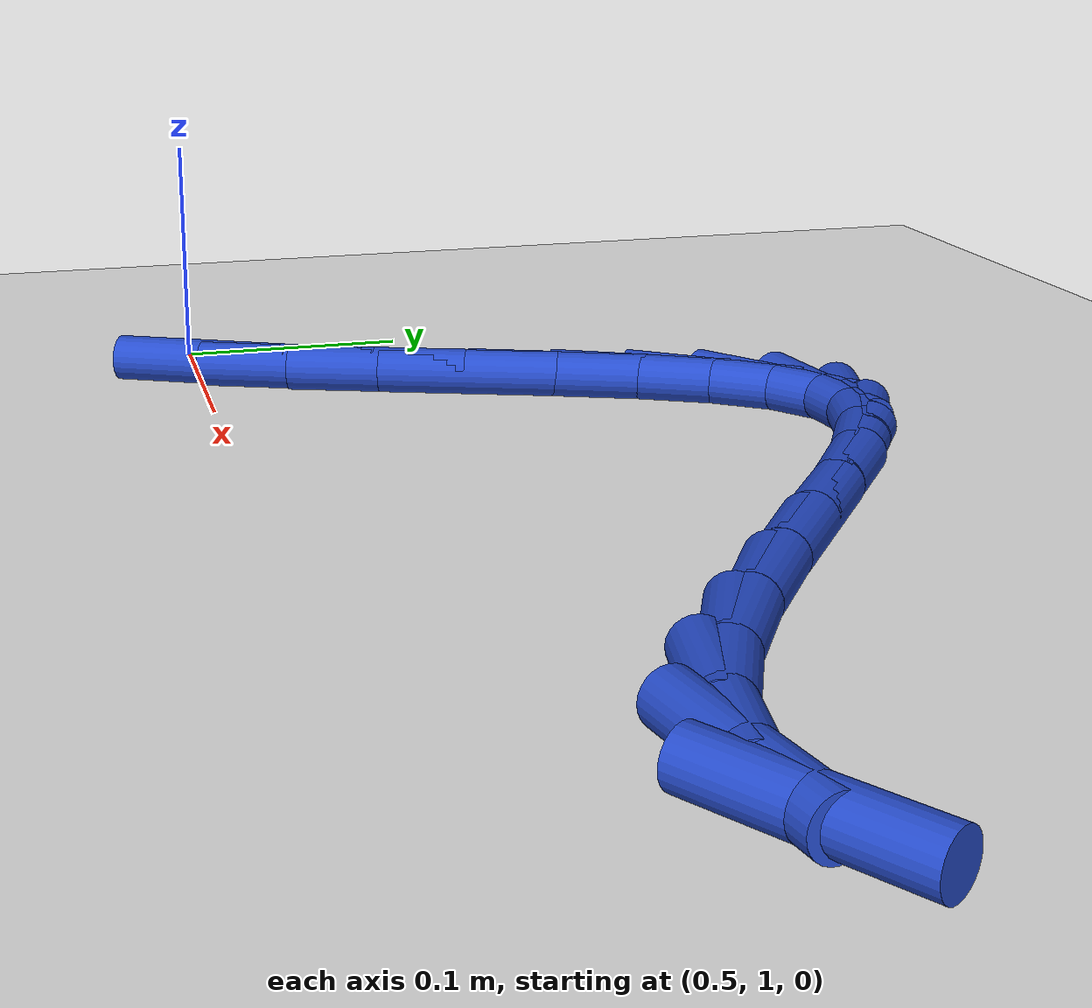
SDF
<sdf version="1.6">
 <world name="default">
  <model name="ground_plane">
   <static>1</static>
   <link name="link">
    <collision name="collision">
     <geometry><plane><normal>0 0 1</normal><size>100 100</size></plane></geometry>
     <surface><friction><ode><mu>100</mu><mu2>50</mu2></ode></friction></surface>
    </collision>
    <visual name="visual">
     <cast_shadows>0</cast_shadows>
     <geometry><plane><normal>0 0 1</normal><size>100 100</size></plane></geometry>
     <material>
      <script><uri>file://media/materials/scripts/gazebo.material</uri><name>Gazebo/WhiteGlow</name></script>
     </material>
    </visual>
   </link>
  </model>
  <model name="line">
   <link name="link_37">
    <pose>0.5518503437649304 1.001461385851583 0.01 0 1.57 1.106547656888992</pose>
    <collision name="collision">
     <geometry><cylinder><radius>0.01</radius><length>0.08</length></cylinder></geometry>
    </collision>
    <visual name="visual">
     <material>
      <script><name>Gazebo/Blue</name><uri>file://media/materials/scripts/gazebo.material</uri></script>
     </material>
     <geometry><cylinder><radius>0.01</radius><length>0.08</length></cylinder></geometry>
    </visual>
   </link>
   <link name="link_38">
    <pose>0.56981500103304 1.0373367759392773 0.01 0 1.57 1.1787809687492365</pose>
    <collision name="collision">
     <geometry><cylinder><radius>0.01</radius><length>0.08</length></cylinder></geometry>
    </collision>
    <visual name="visual">
     <material>
      <script><name>Gazebo/Blue</name><uri>file://media/materials/scripts/gazebo.material</uri></script>
     </material>
     <geometry><cylinder><radius>0.01</radius><length>0.08</length></cylinder></geometry>
    </visual>
   </link>
   <link name="link_39">
    <pose>0.5855913043726308 1.0754979189473892 0.01 0 1.57 1.2146382591876208</pose>
    <collision name="collision">
     <geometry><cylinder><radius>0.01</radius><length>0.08</length></cylinder></geometry>
    </collision>
    <visual name="visual">
     <material>
      <script><name>Gazebo/Blue</name><uri>file://media/materials/scripts/gazebo.material</uri></script>
     </material>
     <geometry><cylinder><radius>0.01</radius><length>0.08</length></cylinder></geometry>
    </visual>
   </link>
   <link name="link_40">
    <pose>0.5999566102617917 1.1141119545383242 0.01 0 1.57 1.217478451750848</pose>
    <collision name="collision">
     <geometry><cylinder><radius>0.01</radius><length>0.08</length></cylinder></geometry>
    </collision>
    <visual name="visual">
     <material>
      <script><name>Gazebo/Blue</name><uri>file://media/materials/scripts/gazebo.material</uri></script>
     </material>
     <geometry><cylinder><radius>0.01</radius><length>0.08</length></cylinder></geometry>
    </visual>
   </link>
   <link name="link_41">
    <pose>0.6136882751786112 1.1513460223744874 0.01 0 1.57 1.1835456714124042</pose>
    <collision name="collision">
     <geometry><cylinder><radius>0.01</radius><length>0.08</length></cylinder></geometry>
    </collision>
    <visual name="visual">
     <material>
      <script><name>Gazebo/Blue</name><uri>file://media/materials/scripts/gazebo.material</uri></script>
     </material>
     <geometry><cylinder><radius>0.01</radius><length>0.08</length></cylinder></geometry>
    </visual>
   </link>
   <link name="link_42">
    <pose>0.6275636556011782 1.1853672621182834 0.01 0 1.57 1.0986626775487782</pose>
    <collision name="collision">
     <geometry><cylinder><radius>0.01</radius><length>0.08</length></cylinder></geometry>
    </collision>
    <visual name="visual">
     <material>
      <script><name>Gazebo/Blue</name><uri>file://media/materials/scripts/gazebo.material</uri></script>
     </material>
     <geometry><cylinder><radius>0.01</radius><length>0.08</length></cylinder></geometry>
    </visual>
   </link>
   <link name="link_43">
    <pose>0.6423601080075816 1.2143428134321175 0.01 0 1.57 0.9295544306102976</pose>
    <collision name="collision">
     <geometry><cylinder><radius>0.01</radius><length>0.08</length></cylinder></geometry>
    </collision>
    <visual name="visual">
     <material>
      <script><name>Gazebo/Blue</name><uri>file://media/materials/scripts/gazebo.material</uri></script>
     </material>
     <geometry><cylinder><radius>0.01</radius><length>0.08</length></cylinder></geometry>
    </visual>
   </link>
   <link name="link_44">
    <pose>0.6588549888759102 1.2364398159783954 0.01 0 1.57 0.6144706610278099</pose>
    <collision name="collision">
     <geometry><cylinder><radius>0.01</radius><length>0.08</length></cylinder></geometry>
    </collision>
    <visual name="visual">
     <material>
      <script><name>Gazebo/Blue</name><uri>file://media/materials/scripts/gazebo.material</uri></script>
     </material>
     <geometry><cylinder><radius>0.01</radius><length>0.08</length></cylinder></geometry>
    </visual>
   </link>
   <link name="link_45">
    <pose>0.6778256546842527 1.2498254094195214 0.01 0 1.57 0.12982233505834545</pose>
    <collision name="collision">
     <geometry><cylinder><radius>0.01</radius><length>0.08</length></cylinder></geometry>
    </collision>
    <visual name="visual">
     <material>
      <script><name>Gazebo/Blue</name><uri>file://media/materials/scripts/gazebo.material</uri></script>
     </material>
     <geometry><cylinder><radius>0.01</radius><length>0.08</length></cylinder></geometry>
    </visual>
   </link>
   <link name="link_46">
    <pose>0.7000303085403444 1.2527243739877905 0.01 0 1.57 -0.2857190893415801</pose>
    <collision name="collision">
     <geometry><cylinder><radius>0.01</radius><length>0.08</length></cylinder></geometry>
    </collision>
    <visual name="visual">
     <material>
      <script><name>Gazebo/Blue</name><uri>file://media/materials/scripts/gazebo.material</uri></script>
     </material>
     <geometry><cylinder><radius>0.01</radius><length>0.08</length></cylinder></geometry>
    </visual>
   </link>
   <link name="link_47">
    <pose>0.7256131645809981 1.2452092416968248 0.01 0 1.57 -0.5043320786215698</pose>
    <collision name="collision">
     <geometry><cylinder><radius>0.01</radius><length>0.08</length></cylinder></geometry>
    </collision>
    <visual name="visual">
     <material>
      <script><name>Gazebo/Blue</name><uri>file://media/materials/scripts/gazebo.material</uri></script>
     </material>
     <geometry><cylinder><radius>0.01</radius><length>0.08</length></cylinder></geometry>
    </visual>
   </link>
   <link name="link_48">
    <pose>0.7539891093596383 1.2295473988739276 0.01 0 1.57 -0.6114819625548455</pose>
    <collision name="collision">
     <geometry><cylinder><radius>0.01</radius><length>0.08</length></cylinder></geometry>
    </collision>
    <visual name="visual">
     <material>
      <script><name>Gazebo/Blue</name><uri>file://media/materials/scripts/gazebo.material</uri></script>
     </material>
     <geometry><cylinder><radius>0.01</radius><length>0.08</length></cylinder></geometry>
    </visual>
   </link>
   <link name="link_49">
    <pose>0.7845305938335502 1.2081339384536351 0.01 0 1.57 -0.6575235081321753</pose>
    <collision name="collision">
     <geometry><cylinder><radius>0.01</radius><length>0.08</length></cylinder></geometry>
    </collision>
    <visual name="visual">
     <material>
      <script><name>Gazebo/Blue</name><uri>file://media/materials/scripts/gazebo.material</uri></script>
     </material>
     <geometry><cylinder><radius>0.01</radius><length>0.08</length></cylinder></geometry>
    </visual>
   </link>
   <link name="link_50">
    <pose>0.81661006896002 1.1833639533704845 0.01 0 1.57 -0.6624127575131042</pose>
    <collision name="collision">
     <geometry><cylinder><radius>0.01</radius><length>0.08</length></cylinder></geometry>
    </collision>
    <visual name="visual">
     <material>
      <script><name>Gazebo/Blue</name><uri>file://media/materials/scripts/gazebo.material</uri></script>
     </material>
     <geometry><cylinder><radius>0.01</radius><length>0.08</length></cylinder></geometry>
    </visual>
   </link>
   <link name="link_51">
    <pose>0.8495999856963333 1.157632536559012 0.01 0 1.57 -0.6307464454100689</pose>
    <collision name="collision">
     <geometry><cylinder><radius>0.01</radius><length>0.08</length></cylinder></geometry>
    </collision>
    <visual name="visual">
     <material>
      <script><name>Gazebo/Blue</name><uri>file://media/materials/scripts/gazebo.material</uri></script>
     </material>
     <geometry><cylinder><radius>0.01</radius><length>0.08</length></cylinder></geometry>
    </visual>
   </link>
   <link name="link_52">
    <pose>0.8828727949997763 1.1333347809537553 0.01 0 1.57 -0.5561695094122968</pose>
    <collision name="collision">
     <geometry><cylinder><radius>0.01</radius><length>0.08</length></cylinder></geometry>
    </collision>
    <visual name="visual">
     <material>
      <script><name>Gazebo/Blue</name><uri>file://media/materials/scripts/gazebo.material</uri></script>
     </material>
     <geometry><cylinder><radius>0.01</radius><length>0.08</length></cylinder></geometry>
    </visual>
   </link>
   <link name="link_53">
    <pose>0.9158009478276345 1.1128657794892507 0.01 0 1.57 -0.4193346537623533</pose>
    <collision name="collision">
     <geometry><cylinder><radius>0.01</radius><length>0.08</length></cylinder></geometry>
    </collision>
    <visual name="visual">
     <material>
      <script><name>Gazebo/Blue</name><uri>file://media/materials/scripts/gazebo.material</uri></script>
     </material>
     <geometry><cylinder><radius>0.01</radius><length>0.08</length></cylinder></geometry>
    </visual>
   </link>
   <link name="link_54">
    <pose>0.9477568951371937 1.0986206251000354 0.01 0 1.57 -0.1832604188640608</pose>
    <collision name="collision">
     <geometry><cylinder><radius>0.01</radius><length>0.08</length></cylinder></geometry>
    </collision>
    <visual name="visual">
     <material>
      <script><name>Gazebo/Blue</name><uri>file://media/materials/scripts/gazebo.material</uri></script>
     </material>
     <geometry><cylinder><radius>0.01</radius><length>0.08</length></cylinder></geometry>
    </visual>
   </link>
   <link name="link_55">
    <pose>0.9781130878857398 1.092994410720646 0.01 0 1.57 0.18881475932484434</pose>
    <collision name="collision">
     <geometry><cylinder><radius>0.01</radius><length>0.08</length></cylinder></geometry>
    </collision>
    <visual name="visual">
     <material>
      <script><name>Gazebo/Blue</name><uri>file://media/materials/scripts/gazebo.material</uri></script>
     </material>
     <geometry><cylinder><radius>0.01</radius><length>0.08</length></cylinder></geometry>
    </visual>
   </link>
   <link name="link_56">
    <pose>1.0062453580594475 1.0983702354294929 0.01 0 1.57 0.5744482949221402</pose>
    <collision name="collision">
     <geometry><cylinder><radius>0.01</radius><length>0.08</length></cylinder></geometry>
    </collision>
    <visual name="visual">
     <material>
      <script><name>Gazebo/Blue</name><uri>file://media/materials/scripts/gazebo.material</uri></script>
     </material>
     <geometry><cylinder><radius>0.01</radius><length>0.08</length></cylinder></geometry>
    </visual>
   </link>
  </model>
 </world>
</sdf>
